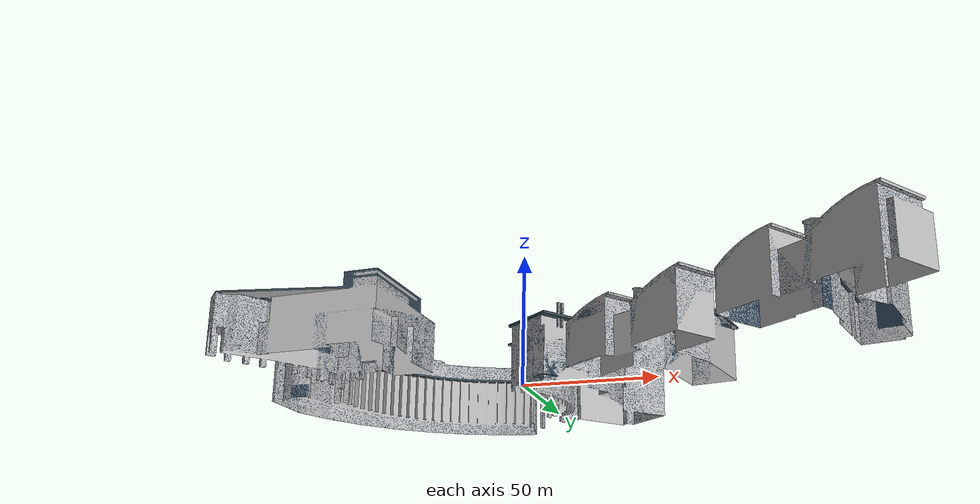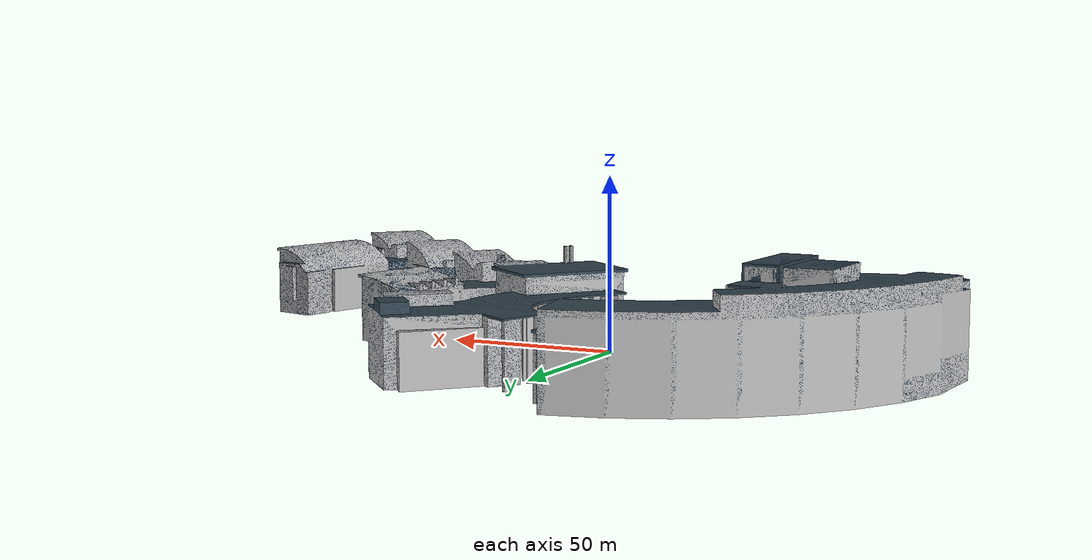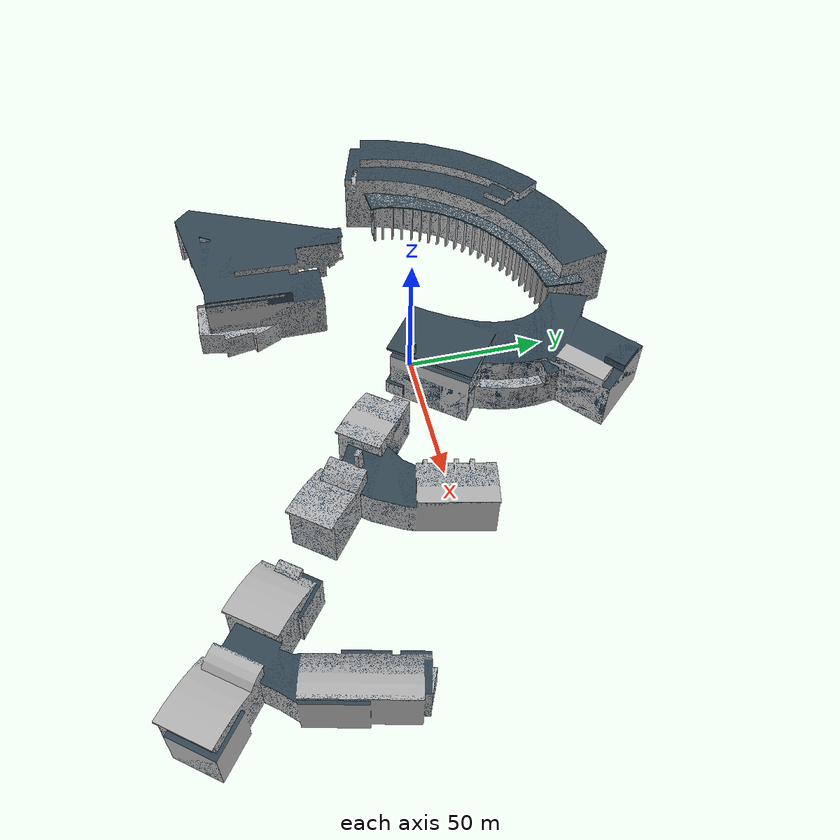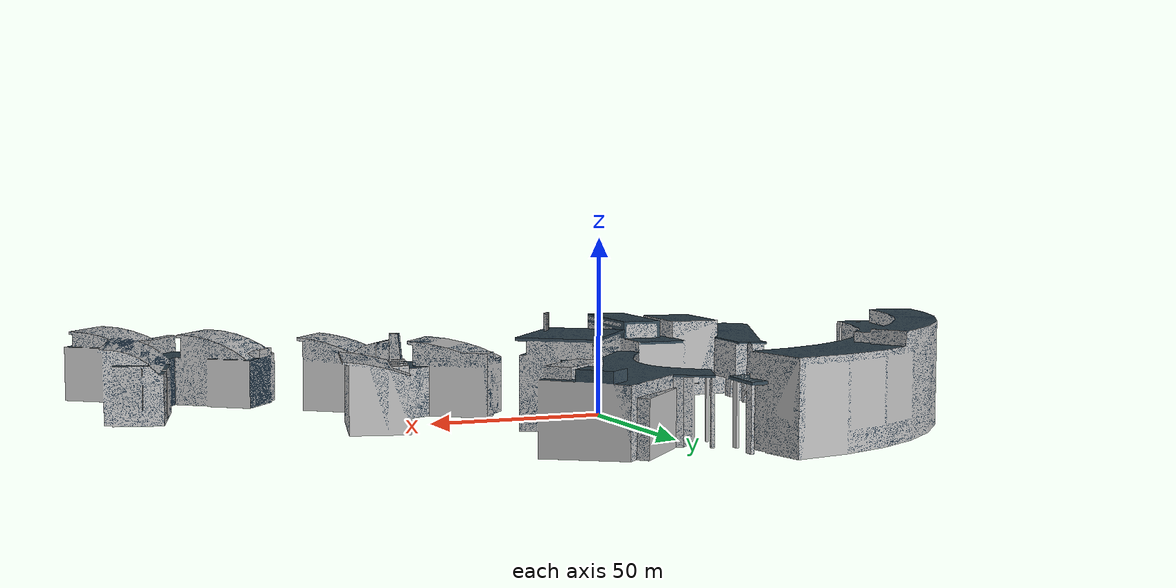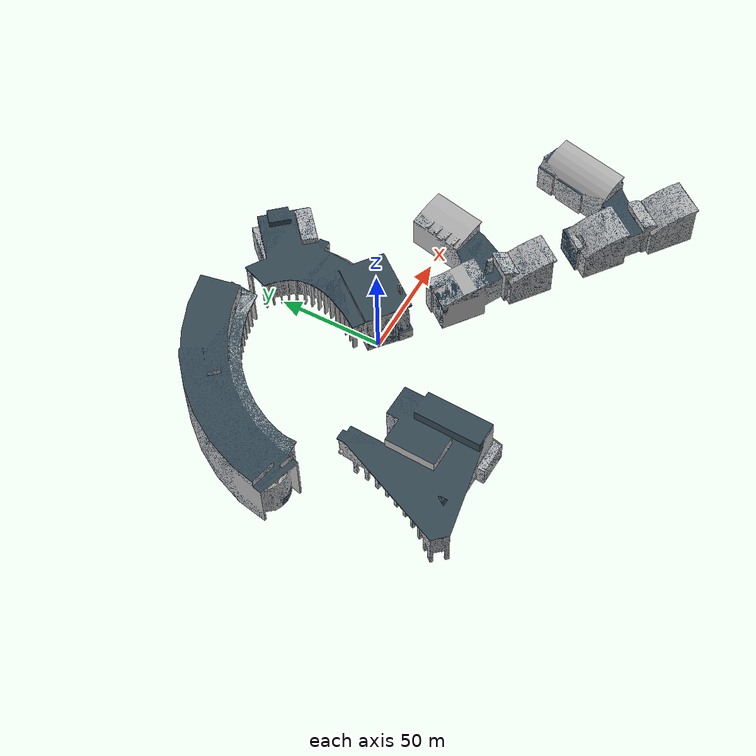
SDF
<?xml version="1.0" ?>
<sdf version="1.5">
  <model name="Olin">
    <static>true</static>
    <link name="link">
      <!-- TODO: Add collision box -->

      <visual name="visual">
        <geometry>
          <mesh>
            <uri>model://olin/meshes/full_campus.dae</uri>
          </mesh>
        </geometry>
      </visual>
    </link>
  </model>
</sdf>
